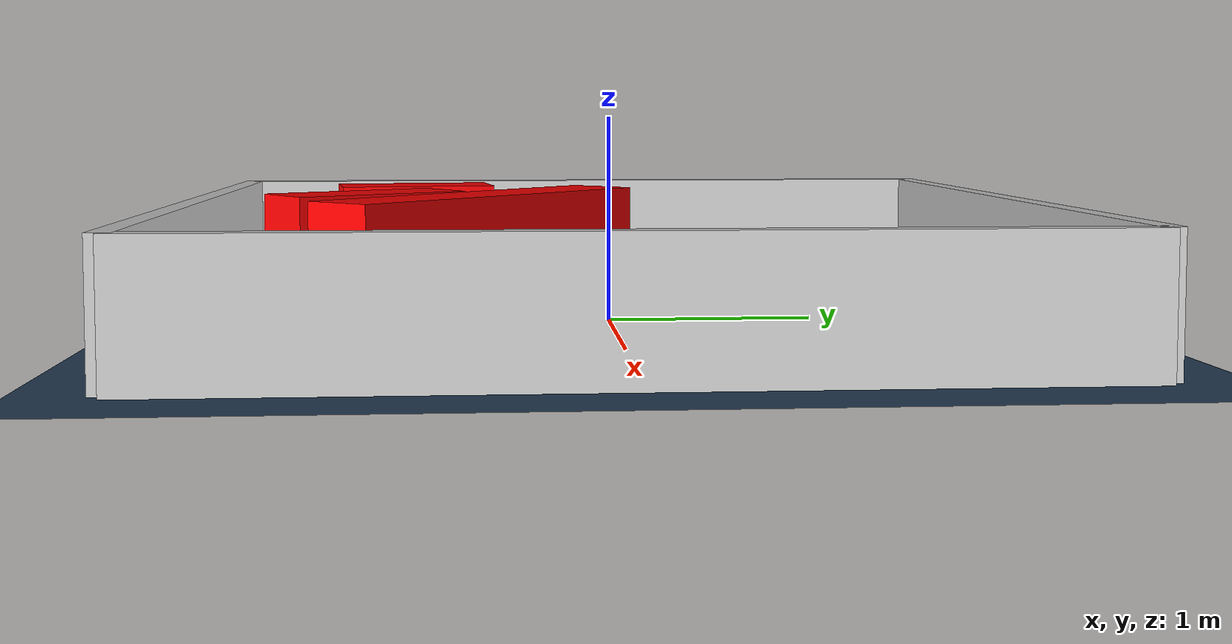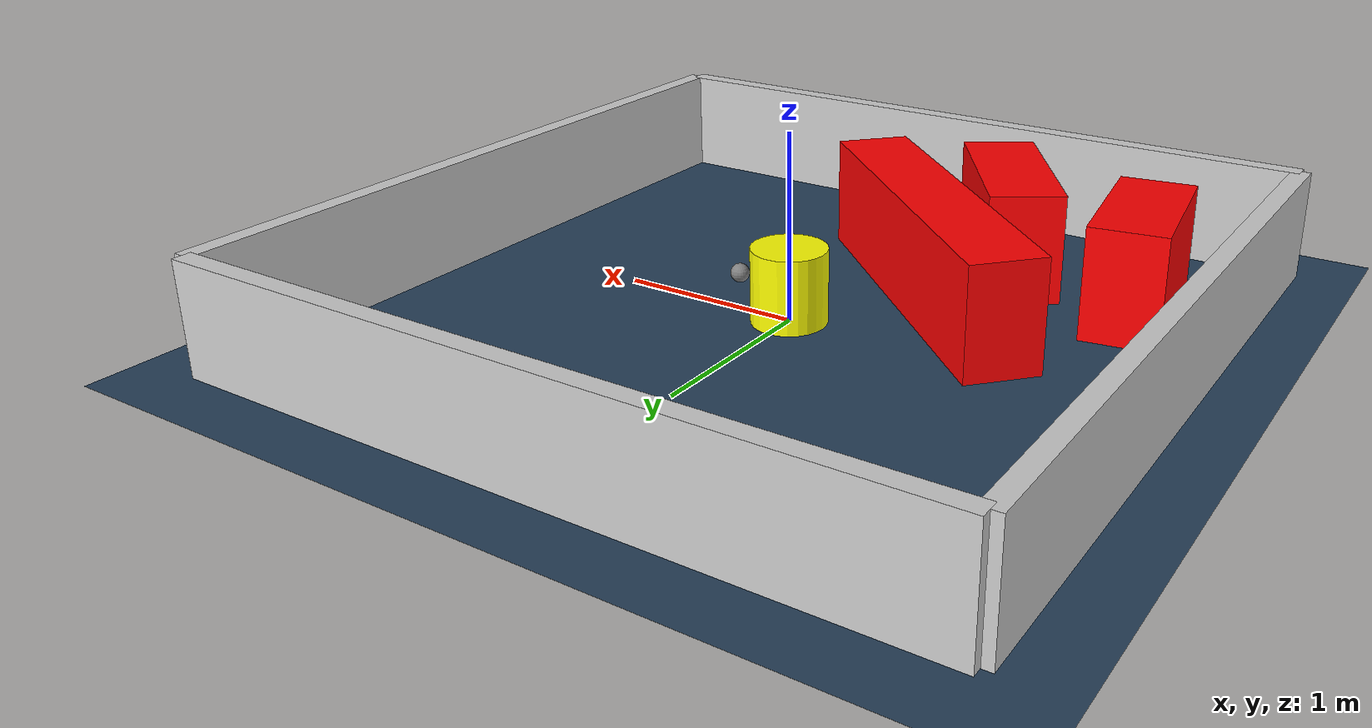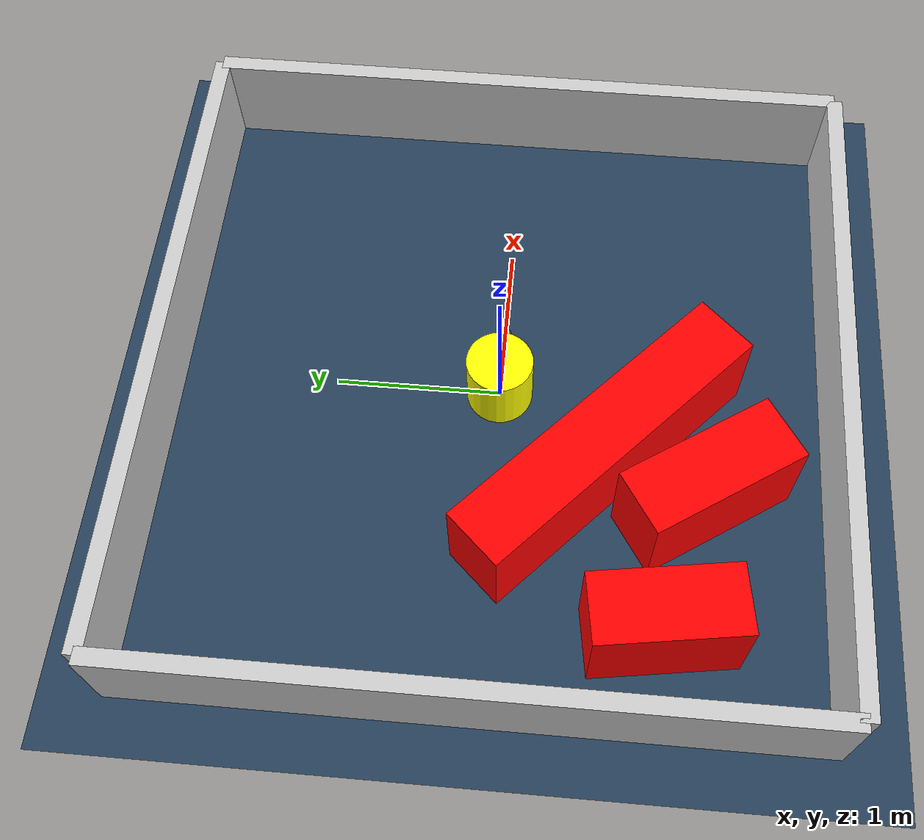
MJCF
<?xml version="1.0" ?>
<mujoco model="generated_environment">
  <option timestep="0.01" integrator="RK4" cone="elliptic"/>
  <default>
    <geom density="1"/>
  </default>
  <asset>
    <texture builtin="gradient" height="3072" rgb1="0.3 0.5 0.7" rgb2="0 0 0" type="skybox" width="512"/>
    <texture builtin="checker" height="300" mark="edge" markrgb="0.8 0.8 0.8" name="groundplane" rgb1="0.2 0.3 0.4" rgb2="0.1 0.2 0.3" type="2d" width="300"/>
    <material name="groundplane" reflectance="0.2" texrepeat="5 5" texture="groundplane" texuniform="true"/>
    <material name="robot" rgba="0.0 1.0 0.0 1"/>
  </asset>
  <worldbody>
    <light dir="0 0 -1" directional="true" pos="0 0 1.5"/>
    <geom condim="4" friction="1.0 0.005 0.001" material="groundplane" name="floor" size="0 0 0.05" type="plane"/>
    <body name="walls">
      <geom name="wall_1" condim="4" pos="-2.0 0.0 0.3" rgba="0.800000011920929 0.800000011920929 0.800000011920929 1.0" size="0.05 2.0 0.3" type="box"/>
      <geom name="wall_2" condim="4" pos="2.0 0.0 0.3" rgba="0.800000011920929 0.800000011920929 0.800000011920929 1.0" size="0.05 2.0 0.3" type="box"/>
      <geom name="wall_3" condim="4" pos="0.0 -2.0 0.3" rgba="0.800000011920929 0.800000011920929 0.800000011920929 1.0" size="2.0 0.05 0.3" type="box"/>
      <geom name="wall_4" condim="4" pos="0.0 2.0 0.3" rgba="0.800000011920929 0.800000011920929 0.800000011920929 1.0" size="2.0 0.05 0.3" type="box"/>
    </body>
    <body name="robot">
      <joint name="joint_x" type="slide" pos="0 0 0" axis="1 0 0"/>
      <joint name="joint_y" type="slide" pos="0 0 0" axis="0 1 0"/>
      <geom name="robot" type="sphere" pos="0.3 0.0 0.2" size="0.05" mass="5." friction="1.0 0.005 0.0001" condim="4" rgba="0.5 0.5 0.5 1.0"/>
      <site name="sensor_ball"/>
    </body>
    <body name="obstacle_movable_1">
      <geom name="obstacle_movable_1" condim="4" pos="0.0 0.0 0.2" euler="0 0 0.0" friction="1.0 0.005 0.001" rgba="1.0 1.0 0.0 1.0" size="0.2 0.2 0.0" type="cylinder" mass="0.1"/>
      <joint type="free"/>
    </body>
    <body name="obstacle_2_static">
      <geom name="obstacle_2_static" condim="4" pos="-0.6560625276807294 -1.2332442907701706 0.3" euler="0 0 303.2379498712801" friction="1.0 0.005 0.001" rgba="1 0 0 1" size="0.4868621213520818 0.2 0.3" type="box"/>
    </body>
    <body name="obstacle_3_static">
      <geom name="obstacle_3_static" condim="4" pos="-0.4779582724009904 -0.6280236455304706 0.3" euler="0 0 317.0793626078362" friction="1.0 0.005 0.001" rgba="1 0 0 1" size="0.9969608434361319 0.2 0.3" type="box"/>
    </body>
    <body name="obstacle_4_static">
      <geom name="obstacle_4_static" condim="4" pos="-1.4665173843635655 -1.009548900056261 0.3" euler="0 0 278.59172246143686" friction="1.0 0.005 0.001" rgba="1 0 0 1" size="0.42536698016819197 0.2 0.3" type="box"/>
    </body>
  </worldbody>
  <actuator>
    <motor name="actuator_x" joint="joint_x" gear="1" ctrlrange="-1 1"/>
    <motor name="actuator_y" joint="joint_y" gear="1" ctrlrange="-1 1"/>
  </actuator>
</mujoco>
